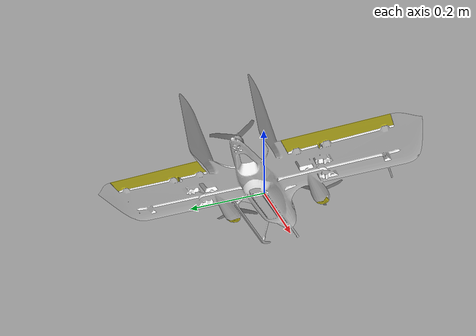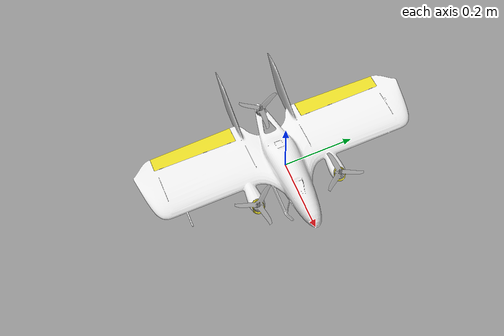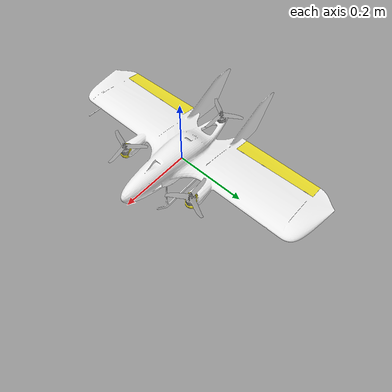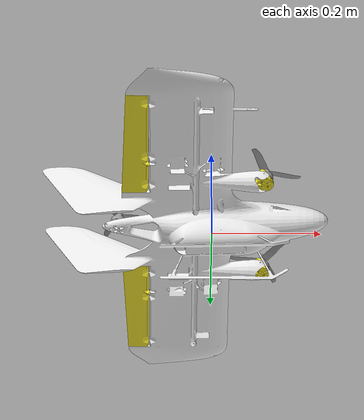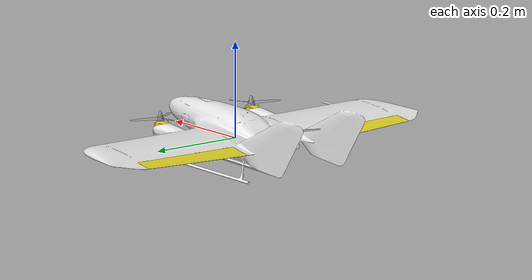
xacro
<?xml version="1.0"?>
<robot name="minihawk_SIM" xmlns:xacro="http://ros.org/wiki/xacro">

  <xacro:arg name="robot_namespace" default=""/>
  <xacro:arg name="robot_prefix" default=""/>

  <!-- Vehicle -->
  <xacro:include filename="$(find robowork_minihawk_description)/urdf/minihawk.xacro" />

  <!-- Instantiate -->
  <xacro:minihawk_robot
         robot_namespace="$(arg robot_namespace)"
         robot_prefix="$(arg robot_prefix)">
  </xacro:minihawk_robot>

</robot>

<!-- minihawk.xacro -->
<robot name="minihawk_robot" xmlns:xacro="http://ros.org/wiki/xacro">

  <xacro:include filename="$(find robowork_minihawk_description)/urdf/robowork_utils.xacro" />

  <xacro:include filename="$(find robowork_minihawk_description)/urdf/usb_camera_nocollisionvisual.urdf.xacro" />

  <xacro:macro name="minihawk_robot" params="robot_namespace robot_prefix">

    <!-- Map link -->

    <!-- Gazebo plugin for ROS Control -->
    <gazebo>
      <plugin name="gazebo_ros_control" filename="libgazebo_ros_control.so">
        <robotNamespace>$(arg robot_namespace)</robotNamespace>
      </plugin>
    </gazebo>

    <!-- Publish joint state & tfs from Gazebo (we don't have a MoveIt pipeline) -->
    <gazebo>
      <plugin name="joint_state_publisher" filename="libgazebo_ros_joint_state_publisher.so">
        <robotNamespace>$(arg robot_namespace)</robotNamespace>
        <jointName>${robot_prefix}imu_joint,${robot_prefix}tilt_base_left_joint,${robot_prefix}tilt_base_right_joint,${robot_prefix}motor_left_joint,${robot_prefix}motor_right_joint,${robot_prefix}motor_rear_joint,${robot_prefix}elevon_left_joint,${robot_prefix}elevon_right_joint</jointName>
        <updateRate>20</updateRate>
        <alwaysOn>true</alwaysOn>
      </plugin>
    </gazebo>

    <gazebo>
      <plugin name="${robot_prefix}base_link_p3d_controller" filename="libgazebo_ros_p3d.so">
        <alwaysOn>true</alwaysOn>
        <robotNamespace>$(arg robot_namespace)</robotNamespace>
        <bodyName>${robot_prefix}base_link</bodyName>
        <topicName>odom</topicName>
        <updateRate>20.0</updateRate>
        <gaussianNoise>0.0</gaussianNoise>
        <frameName>map</frameName>
        <xyzOffsets>0 0 0</xyzOffsets>
        <rpyOffsets>0 0 0</rpyOffsets>
      </plugin>
    </gazebo>

    <!-- Base Link / Airframe -->
    <link
      name="${robot_prefix}base_link">
      <inertial>
        <origin
          xyz="${-0.043952} -0.00020281 0.020884"
          rpy="0 0 0" />  <!-- From Solidworks -->
        <mass
          value="1.260" />
        <inertia
          ixx="0.054585"
          ixy="-4.9142E-06"
          ixz="8.3664E-05"
          iyy="0.0089109"
          iyz="-1.2991E-06"
          izz="0.063038" />
      </inertial>
      <visual>
        <origin
          xyz="0 0 0"
          rpy="0 0 0" />
        <geometry>
          <mesh
            filename="package://robowork_minihawk_description/meshes/visual/airframe_v2_1.STL" scale="0.001 0.001 0.001" />
        </geometry>
      </visual>
      <collision>
        <origin
          xyz="0 0 0"
          rpy="0 0 0" />
        <geometry>
          <mesh
            filename="package://robowork_minihawk_description/meshes/collision/airframe_v2_1.STL" scale="0.001 0.001 0.001" />
        </geometry>
      </collision>
    </link>
    <gazebo reference="${robot_prefix}base_link">
      <enable_wind>true</enable_wind>
      <material>Gazebo/White</material>
      <dampingFactor>0.0</dampingFactor>
      <maxVel>100.0</maxVel>
      <minDepth>0.001</minDepth>
      <mu1>100000.0</mu1>
      <mu2>100000.0</mu2>
      <fdir1>1 0 0</fdir1>
    </gazebo>

    <!-- IMU -->
    <link
      name='${robot_prefix}imu_link'>
      <inertial>
        <origin
          xyz="0 0 0"
          rpy="0 0 0" />
        <mass
          value="0.15" />
        <inertia
          ixx="0.00001"
          ixy="0"
          ixz="0"
          iyy="0.00002"
          iyz="0"
          izz="0.00002" />
      </inertial>
    </link>
    <gazebo reference="${robot_prefix}imu_link">
      <material>Gazebo/Red</material>
      <dampingFactor>0.0</dampingFactor>
    </gazebo>

    <joint
      name='${robot_prefix}imu_joint'
      type='revolute'>
      <origin
        xyz="0 0 0"
        rpy="0 0 0" />
      <parent
        link="${robot_prefix}base_link" />
      <child
        link="${robot_prefix}imu_link" />
      <axis
        xyz="0 0 1" />
      <limit
        lower="0"
        upper="0"
        effort="0"
        velocity="0" />
    </joint>

    <gazebo reference="${robot_prefix}imu_link">
      <gravity>true</gravity>
      <sensor name="${robot_prefix}imu_sensor" type="imu">
        <always_on>true</always_on>
        <update_rate>1000</update_rate>
        <visualize>true</visualize>
        <topic>__default_topic__</topic>
        <plugin filename="libgazebo_ros_imu_sensor.so" name="${robot_prefix}imu_plugin">
          <topicName>${robot_prefix}imu</topicName>
          <bodyName>${robot_prefix}imu_link</bodyName>
          <updateRateHZ>100.0</updateRateHZ>
          <gaussianNoise>0.0</gaussianNoise>
          <xyzOffset>0 0 0</xyzOffset>
          <rpyOffset>0 0 0</rpyOffset>
          <frameName>${robot_prefix}imu_link</frameName>
          <initialOrientationAsReference>false</initialOrientationAsReference>
        </plugin>
        <pose>0 0 0 3.141593 0 0</pose>
      </sensor>

    </gazebo>

    <link
      name="${robot_prefix}elevon_left">
      <inertial>
        <origin
          xyz="-0.016695 -0.0078246 -0.0046242"
          rpy="0 0 0" />
        <mass
          value="0.031995" />
        <inertia
          ixx="0.00014823"
          ixy="-2.1683E-06"
          ixz="-4.102E-07"
          iyy="3.7582E-06"
          iyz="-3.489E-06"
          izz="0.00015162" />
      </inertial>
      <visual>
        <origin
          xyz="0 0 0"
          rpy="0 0 0" />
        <geometry>
          <mesh
            filename="package://robowork_minihawk_description/meshes/visual/elevon_left_2.STL" scale="0.001 0.001 0.001" />
        </geometry>
      </visual>
      <collision>
        <origin
          xyz="0 0 0"
          rpy="0 0 0" />
        <geometry>
          <mesh
            filename="package://robowork_minihawk_description/meshes/collision/elevon_left_2.STL" scale="0.001 0.001 0.001" />
        </geometry>
      </collision>
    </link>
    <gazebo reference="${robot_prefix}elevon_left">
      <material>Gazebo/Yellow</material>
      <dampingFactor>0.0</dampingFactor>
    </gazebo>

    <link
      name="${robot_prefix}elevon_right">
      <inertial>
        <origin
          xyz="-0.016694412474252 0.00780708016092146 -0.00462373768607982"
          rpy="0 0 0" />
        <mass
          value="0.031995066416716" />
        <inertia
          ixx="0.00014823038394432"
          ixy="2.16808957939724E-06"
          ixz="-4.10153864877624E-07"
          iyy="3.7579009438246E-06"
          iyz="3.48789430741058E-06"
          izz="0.000151624173697509" />
      </inertial>
      <visual>
        <origin
          xyz="0 0 0"
          rpy="0 0 0" />
        <geometry>
          <mesh
            filename="package://robowork_minihawk_description/meshes/visual/elevon_right_3.STL" scale="0.001 0.001 0.001" />
        </geometry>
      </visual>
      <collision>
        <origin
          xyz="0 0 0"
          rpy="0 0 0" />
        <geometry>
          <mesh
            filename="package://robowork_minihawk_description/meshes/collision/elevon_right_3.STL" scale="0.001 0.001 0.001" />
        </geometry>
      </collision>
    </link>
    <gazebo reference="${robot_prefix}elevon_right">
      <material>Gazebo/Yellow</material>
      <dampingFactor>0.0</dampingFactor>
    </gazebo>

    <joint
      name="${robot_prefix}elevon_left_joint"
      type="revolute">
      <origin
        xyz="-0.11591 0.22 0.017412"
        rpy="0 0 0" />
      <parent
        link="${robot_prefix}base_link" />
      <child
        link="${robot_prefix}elevon_left" />
      <axis
        xyz="-0.0007333 0.99987 0.016202" />
      <limit
        lower="${-pi}"
        upper="${pi}"
        effort="-1"
        velocity="-1" />
      <dynamics
        damping="0.004"
        friction="0.0"/>
    </joint>
    <gazebo reference="${robot_prefix}elevon_left_joint">
      <implicitSpringDamper>1</implicitSpringDamper>
    </gazebo>

    <joint
      name="${robot_prefix}elevon_right_joint"
      type="revolute">
      <origin
        xyz="-0.11591 -0.22 0.017412"
        rpy="0 0 0" />
      <parent
        link="${robot_prefix}base_link" />
      <child
        link="${robot_prefix}elevon_right" />
      <axis
        xyz="-0.00073329 -0.99987 0.016202" />
      <limit
        lower="${-pi}"
        upper="${pi}"
        effort="-1"
        velocity="-1" />
      <dynamics
        damping="0.004"
        friction="0.0"/>
    </joint>
    <gazebo reference="${robot_prefix}elevon_right_joint">
      <implicitSpringDamper>1</implicitSpringDamper>
    </gazebo>

    <link
      name="${robot_prefix}tilt_base_left">
      <inertial>
        <origin
          xyz="0.011488 0.00092065 -0.011861"
          rpy="0 0 0" />
        <mass
          value="0.0044333" />
        <inertia
          ixx="6.2427E-07"
          ixy="-7.1471E-09"
          ixz="2.0206E-07"
          iyy="6.3888E-07"
          iyz="-3.6525E-09"
          izz="7.1504E-07" />
      </inertial>
      <visual>
        <origin
          xyz="0 0 0"
          rpy="0 0 0" />
        <geometry>
          <mesh
            filename="package://robowork_minihawk_description/meshes/visual/tilt_base_left_6.STL" scale="0.001 0.001 0.001" />
        </geometry>
      </visual>
      <collision>
        <origin
          xyz="0 0 0"
          rpy="0 0 0" />
        <geometry>
          <mesh
            filename="package://robowork_minihawk_description/meshes/collision/tilt_base_left_6.STL" scale="0.001 0.001 0.001" />
        </geometry>
      </collision>
    </link>
    <gazebo reference="${robot_prefix}tilt_base_left">
      <material>Gazebo/Yellow</material>
      <dampingFactor>0.0</dampingFactor>
    </gazebo>

    <link
      name="${robot_prefix}tilt_base_right">
      <inertial>
        <origin
          xyz="0.01148775818104 -0.000920893007347656 -0.0118621303719882"
          rpy="0 0 0" />
        <mass
          value="0.00443298460677752" />
        <inertia
          ixx="6.24157824751321E-07"
          ixy="7.14620513533871E-09"
          ixz="2.02068521423661E-07"
          iyy="6.38865692774954E-07"
          iyz="3.66773546790886E-09"
          izz="7.15011883969272E-07" />
      </inertial>
      <visual>
        <origin
          xyz="0 0 0"
          rpy="0 0 0" />
        <geometry>
          <mesh
            filename="package://robowork_minihawk_description/meshes/visual/tilt_base_right_7.STL" scale="0.001 0.001 0.001" />
        </geometry>
      </visual>
      <collision>
        <origin
          xyz="0 0 0"
          rpy="0 0 0" />
        <geometry>
          <mesh
            filename="package://robowork_minihawk_description/meshes/collision/tilt_base_right_7.STL" scale="0.001 0.001 0.001" />
        </geometry>
      </collision>
    </link>
    <gazebo reference="${robot_prefix}tilt_base_right">
      <material>Gazebo/Yellow</material>
      <dampingFactor>0.0</dampingFactor>
    </gazebo>

    <joint
      name="${robot_prefix}tilt_base_left_joint"
      type="revolute">
      <origin
        xyz="0.079757 0.12 0.029293"
        rpy="0 0 0" />
      <parent
        link="${robot_prefix}base_link" />
      <child
        link="${robot_prefix}tilt_base_left" />
      <axis
        xyz="0 -1 0" />
      <limit
        lower="${-pi/2}"
        upper="${+pi/6}"
        effort="-1"
        velocity="-1" />
      <dynamics
        damping="0.004"
        friction="0.0"/>
    </joint>
    <gazebo reference="${robot_prefix}tilt_base_left_joint">
      <implicitSpringDamper>1</implicitSpringDamper>
    </gazebo>

    <joint
      name="${robot_prefix}tilt_base_right_joint"
      type="revolute">
      <origin
        xyz="0.079757 -0.12 0.029293"
        rpy="0 0 0" />
      <parent
        link="${robot_prefix}base_link" />
      <child
        link="${robot_prefix}tilt_base_right" />
      <axis
        xyz="0 -1 0" />
      <limit
        lower="${-pi/2}"
        upper="${+pi/6}"
        effort="-1"
        velocity="-1" />
      <dynamics
        damping="0.004"
        friction="0.0"/>
    </joint>
    <gazebo reference="${robot_prefix}tilt_base_right_joint">
      <implicitSpringDamper>1</implicitSpringDamper>
    </gazebo>

    <link
      name="${robot_prefix}motor_left">
      <inertial>
        <origin
          xyz="0 0 ${0-0*0.0275}"
          rpy="0 0 0" />
        <mass
          value="0.0097589" />
        <inertia
          ixx="1.2266E-06"
          ixy="4.3016E-10"
          ixz="2.2499E-09"
          iyy="1.2201E-06"
          iyz="5.8639E-12"
          izz="1.7472E-06" />
      </inertial>
      <visual>
        <origin
          xyz="0 0 ${0-0.0275}"
          rpy="0 0 0" />
        <geometry>
          <mesh
            filename="package://robowork_minihawk_description/meshes/visual/motor_left_8.STL" scale="0.001 0.001 0.001" />
        </geometry>
      </visual>
      <collision>
        <origin
          xyz="0 0 0"
          rpy="0 0 0" />
        <geometry>
          <cylinder
            length="0.005" radius="0.0635" />
        </geometry>
      </collision>
    </link>
    <gazebo reference="${robot_prefix}motor_left">
      <material>Gazebo/Grey</material>
      <dampingFactor>0.0</dampingFactor>
    </gazebo>

    <link
      name="${robot_prefix}motor_right">
      <inertial>
        <origin
          xyz="0 0 ${0-0*0.0275}"
          rpy="0 0 0" />
        <mass
          value="0.00975898735747096" />
        <inertia
          ixx="1.2266537510526E-06"
          ixy="3.9115367968485E-10"
          ixz="2.24916927492927E-09"
          iyy="1.22016049722597E-06"
          iyz="5.77655688531629E-12"
          izz="1.74721431804352E-06" />
      </inertial>
      <visual>
        <origin
          xyz="0 0 ${0-0.0275}"
          rpy="0 0 0" />
        <geometry>
          <mesh
            filename="package://robowork_minihawk_description/meshes/visual/motor_right_9.STL" scale="0.001 0.001 0.001" />
        </geometry>
      </visual>
      <collision>
        <origin
          xyz="0 0 0"
          rpy="0 0 0" />
        <geometry>
          <cylinder
            length="0.005" radius="0.0635" />
        </geometry>
      </collision>
    </link>
    <gazebo reference="${robot_prefix}motor_right">
      <material>Gazebo/Grey</material>
      <dampingFactor>0.0</dampingFactor>
    </gazebo>

    <link
      name="${robot_prefix}motor_rear">
      <inertial>
        <origin
          xyz="0 0 ${0-0*0.0275}"
          rpy="0 0 0" />
        <mass
          value="0.0097591" />
        <inertia
          ixx="1.2267E-06"
          ixy="3.8043E-10"
          ixz="-2.2484E-09"
          iyy="1.2202E-06"
          iyz="-3.3864E-12"
          izz="1.7473E-06" />
      </inertial>
      <visual>
        <origin
          xyz="0 0 ${0-0.0275}"
          rpy="0 0 0" />
        <geometry>
          <mesh
            filename="package://robowork_minihawk_description/meshes/visual/motor_rear_5.STL" scale="0.001 0.001 0.001" />
        </geometry>
      </visual>
      <collision>
        <origin
          xyz="0 0 0"
          rpy="0 0 0" />
        <geometry>
          <cylinder
            length="0.005" radius="0.0635" />
          <mesh
            filename="package://robowork_minihawk_description/meshes/collision/motor_rear_5.STL" scale="0.001 0.001 0.001" />
        </geometry>
      </collision>
    </link>
    <gazebo reference="${robot_prefix}motor_rear">
      <material>Gazebo/Grey</material>
      <dampingFactor>0.0</dampingFactor>
    </gazebo>

    <joint
      name="${robot_prefix}motor_left_joint"
      type="continuous">
      <limit
        lower="-1e+16"
        upper="1e+16"
        effort="-1"
        velocity="-1" />
      <origin
        xyz="0.016321 0 ${-0.014786+0.0275}"
        rpy="0 0.047169 0" />
      <parent
        link="${robot_prefix}tilt_base_left" />
      <child
        link="${robot_prefix}motor_left" />
      <axis
        xyz="0 0 1" />
      <dynamics
        damping="0.004"
        friction="0.0"/>
    </joint>
    <gazebo reference="${robot_prefix}motor_left_joint">
      <implicitSpringDamper>1</implicitSpringDamper>
    </gazebo>

    <joint
      name="${robot_prefix}motor_right_joint"
      type="continuous">
      <limit
        lower="-1e+16"
        upper="1e+16"
        effort="-1"
        velocity="-1" />
      <origin
        xyz="0.016321 0 ${-0.014786+0.0275}"
        rpy="0 0.047169 0" />
      <parent
        link="${robot_prefix}tilt_base_right" />
      <child
        link="${robot_prefix}motor_right" />
      <axis
        xyz="0 0 1" />
      <dynamics
        damping="0.004"
        friction="0.0"/>
    </joint>
    <gazebo reference="${robot_prefix}motor_right_joint">
      <implicitSpringDamper>1</implicitSpringDamper>
    </gazebo>

    <joint
      name="${robot_prefix}motor_rear_joint"
      type="continuous">
      <limit
        lower="-1e+16"
        upper="1e+16"
        effort="-1"
        velocity="-1" />
      <origin
        xyz="-0.17004 0 ${0.015349+0.0275}"
        rpy="0 0.1293 0" />
      <parent
        link="${robot_prefix}base_link" />
      <child
        link="${robot_prefix}motor_rear" />
      <axis
        xyz="0 0 1" />
      <dynamics
        damping="0.004"
        friction="0.0"/>
    </joint>
    <gazebo reference="${robot_prefix}motor_rear_joint">
      <implicitSpringDamper>1</implicitSpringDamper>
    </gazebo>

    <gazebo>
      <plugin name='${robot_prefix}motor_rear_gazebo_model' filename='libgazebo_motor_model.so'>
        <robotNamespace>$(arg robot_namespace)</robotNamespace>
        <jointName>${robot_prefix}motor_rear_joint</jointName>
        <linkName>${robot_prefix}motor_rear</linkName>
        <turningDirection>ccw</turningDirection>
        <timeConstantUp>0.0125</timeConstantUp>
        <timeConstantDown>0.025</timeConstantDown>
        <maxRotVelocity>5000</maxRotVelocity>
        <motorConstant>2e-06</motorConstant>
        <momentConstant>1e-07</momentConstant>
        <commandSubTopic>/gazebo/command/motor_speed</commandSubTopic>
        <motorNumber>3</motorNumber>
        <rotorDragCoefficient>0.0000000806428</rotorDragCoefficient>
        <rollingMomentCoefficient>1e-09</rollingMomentCoefficient>
        <rotorVelocitySlowdownSim>20</rotorVelocitySlowdownSim>
      </plugin>
      <plugin name='${robot_prefix}motor_left_gazebo_model' filename='libgazebo_motor_model.so'>
        <robotNamespace>$(arg robot_namespace)</robotNamespace>
        <jointName>${robot_prefix}motor_left_joint</jointName>
        <linkName>${robot_prefix}motor_left</linkName>
        <turningDirection>cw</turningDirection>
        <timeConstantUp>0.0125</timeConstantUp>
        <timeConstantDown>0.025</timeConstantDown>
        <maxRotVelocity>5000</maxRotVelocity>
        <motorConstant>2e-06</motorConstant>
        <momentConstant>1e-07</momentConstant>r
        <commandSubTopic>/gazebo/command/motor_speed</commandSubTopic>
        <motorNumber>0</motorNumber>
        <rotorDragCoefficient>0.0000000806428</rotorDragCoefficient>
        <rollingMomentCoefficient>1e-09</rollingMomentCoefficient>
        <rotorVelocitySlowdownSim>20</rotorVelocitySlowdownSim>
      </plugin>
      <plugin name='${robot_prefix}motor_right_gazebo_model' filename='libgazebo_motor_model.so'>
        <robotNamespace>$(arg robot_namespace)</robotNamespace>
        <jointName>${robot_prefix}motor_right_joint</jointName>
        <linkName>${robot_prefix}motor_right</linkName>
        <turningDirection>ccw</turningDirection>
        <timeConstantUp>0.0125</timeConstantUp>
        <timeConstantDown>0.025</timeConstantDown>
        <maxRotVelocity>5000</maxRotVelocity>
        <motorConstant>2e-06</motorConstant>
        <momentConstant>1e-07</momentConstant>
        <commandSubTopic>/gazebo/command/motor_speed</commandSubTopic>
        <motorNumber>1</motorNumber>
        <rotorDragCoefficient>0.0000000806428</rotorDragCoefficient>
        <rollingMomentCoefficient>1e-09</rollingMomentCoefficient>
        <rotorVelocitySlowdownSim>20</rotorVelocitySlowdownSim>
      </plugin>
    </gazebo>

    <gazebo>
      <plugin name="${robot_prefix}wing_left" filename="libLiftDragPlugin.so">

        <robotNamespace>${robot_namespace}</robotNamespace>  <!-- required for PX4's sitl_gazebo version of libLiftDragPlugin.so -->

        <a0>0.05984281113</a0>
        <cla>4.752798721</cla>
        <cda>0.6417112299</cda>
        <cma>0.0</cma>
        <alpha_stall>0.3391428111</alpha_stall>
        <cla_stall>-3.85</cla_stall>
        <cda_stall>-0.9233984055</cda_stall>
        <cma_stall>0</cma_stall>
        <cp>-0.025 0.3 0.05</cp>
        <area>0.5</area>
        <air_density>1.2041</air_density>
        <forward>1 0 0</forward>
        <upward>0 0 1</upward>
        <link_name>${robot_prefix}base_link</link_name>
        <control_joint_name>${robot_prefix}elevon_left_joint</control_joint_name>
        <control_joint_rad_to_cl>+1.5</control_joint_rad_to_cl>
        <windSubTopic>world_wind</windSubTopic>
      </plugin>

      <plugin name="${robot_prefix}wing_right" filename="libLiftDragPlugin.so">

        <robotNamespace>${robot_namespace}</robotNamespace>  <!-- required for PX4's sitl_gazebo version of libLiftDragPlugin.so -->

        <a0>0.05984281113</a0>
        <cla>4.752798721</cla>
        <cda>0.6417112299</cda>
        <cma>0.0</cma>
        <alpha_stall>0.3391428111</alpha_stall>
        <cla_stall>-3.85</cla_stall>
        <cda_stall>-0.9233984055</cda_stall>
        <cma_stall>0</cma_stall>
        <cp>-0.025 -0.3 0.05</cp>
        <area>0.5</area>
        <air_density>1.2041</air_density>
        <forward>1 0 0</forward>
        <upward>0 0 1</upward>
        <link_name>${robot_prefix}base_link</link_name>
        <control_joint_name>${robot_prefix}elevon_right_joint</control_joint_name>
        <control_joint_rad_to_cl>-1.5</control_joint_rad_to_cl>
        <windSubTopic>world_wind</windSubTopic>
      </plugin>
    </gazebo>

    <gazebo>
      <plugin name="${robot_prefix}ardupilot_plugin" filename="libArduPilotPlugin.so">
        <fdm_addr>127.0.0.1</fdm_addr>
        <fdm_port_in>9002</fdm_port_in>
        <fdm_port_out>9003</fdm_port_out>
        <!--
          Require by APM :
          Only change model and gazebo from XYZ to XY-Z coordinates
        -->
        <modelXYZToAirplaneXForwardZDown>0 0 0 3.141593 0 0</modelXYZToAirplaneXForwardZDown>
        <gazeboXYZToNED>0 0 0 3.141593 0 0</gazeboXYZToNED>
        <imuName>${robot_prefix}imu_sensor</imuName>
        <connectionTimeoutMaxCount>5</connectionTimeoutMaxCount>

        <!--
          incoming control command [0, 1]
          so offset it by 0 to get [0, 1]
          and divide max target by 1.
          offset = 0
          multiplier = 838 max rpm / 1 = 838
        -->
        <!--
          turningDirection is deprecated. Please use multiplier.
          Map 'cw' to '-1' and 'ccw' to '1'.
        -->
        <control channel="0">
          <type>VELOCITY</type>
          <offset>0</offset>
          <p_gain>0.005</p_gain>
          <i_gain>0</i_gain>
          <d_gain>0</d_gain>
          <i_max>0</i_max>
          <i_min>0</i_min>
          <cmd_max>1000.0</cmd_max>
          <cmd_min>-1000.0</cmd_min>
          <useForce>1</useForce>
          <jointName>${robot_prefix}motor_right_joint</jointName>
          <multiplier>2000</multiplier>
          <rotorVelocitySlowdownSim>20</rotorVelocitySlowdownSim>
        </control>
        <control channel="1">
          <type>VELOCITY</type>
          <offset>0</offset>
          <p_gain>0.005</p_gain>
          <i_gain>0</i_gain>
          <d_gain>0</d_gain>
          <i_max>0</i_max>
          <i_min>0</i_min>
          <cmd_max>1000.0</cmd_max>
          <cmd_min>-1000.0</cmd_min>
          <useForce>1</useForce>
          <jointName>${robot_prefix}motor_left_joint</jointName>
          <multiplier>-2000</multiplier>
          <rotorVelocitySlowdownSim>20</rotorVelocitySlowdownSim>
        </control>
        <control channel="3">
          <type>VELOCITY</type>
          <offset>0</offset>
          <p_gain>0.005</p_gain>
          <i_gain>0</i_gain>
          <d_gain>0</d_gain>
          <i_max>0</i_max>
          <i_min>0</i_min>
          <cmd_max>1000.0</cmd_max>
          <cmd_min>-1000.0</cmd_min>
          <useForce>1</useForce>
          <jointName>${robot_prefix}motor_rear_joint</jointName>
          <multiplier>3000</multiplier>
          <rotorVelocitySlowdownSim>20</rotorVelocitySlowdownSim>
        </control>

        <control channel="4">
          <multiplier>-2.09439510</multiplier>
          <offset>-0.3</offset>
          <type>POSITION</type>
          <p_gain>1.0</p_gain>
          <i_gain>0</i_gain>
          <d_gain>0.0</d_gain>
          <i_max>0</i_max>
          <i_min>0</i_min>
          <cmd_max>1.0</cmd_max>
          <cmd_min>-1.0</cmd_min>
          <useForce>1</useForce>
          <jointName>${robot_prefix}tilt_base_left_joint</jointName>
        </control>
        <control channel="5">
          <multiplier>2.09439510</multiplier>
          <offset>-0.7</offset>
          <type>POSITION</type>
          <p_gain>1.0</p_gain>
          <i_gain>0</i_gain>
          <d_gain>0.0</d_gain>
          <i_max>0</i_max>
          <i_min>0</i_min>
          <cmd_max>1.0</cmd_max>
          <cmd_min>-1.0</cmd_min>
          <useForce>1</useForce>
          <jointName>${robot_prefix}tilt_base_right_joint</jointName>
        </control>

        <control channel="6">
          <multiplier>1.0</multiplier>
          <offset>-0.5</offset>
          <type>POSITION</type>
          <p_gain>1.0</p_gain>
          <i_gain>0</i_gain>
          <d_gain>0.0</d_gain>
          <i_max>0</i_max>
          <i_min>0</i_min>
          <cmd_max>1</cmd_max>
          <cmd_min>-1</cmd_min>
          <useForce>1</useForce>
          <jointName>${robot_prefix}elevon_left_joint</jointName>
        </control>
        <control channel="7">
          <multiplier>1.0</multiplier>
          <offset>-0.5</offset>
          <type>POSITION</type>
          <p_gain>1.0</p_gain>
          <i_gain>0</i_gain>
          <d_gain>0.0</d_gain>
          <i_max>0</i_max>
          <i_min>0</i_min>
          <cmd_max>1</cmd_max>
          <cmd_min>-1</cmd_min>
          <useForce>1</useForce>
          <jointName>${robot_prefix}elevon_right_joint</jointName>
        </control>

      </plugin>
    </gazebo>

    <!-- USB Camera -->
    <joint name="${robot_prefix}usb_camera_mount_joint" type="fixed">
      <parent link="${robot_prefix}base_link" />
      <child link="${robot_prefix}usb_camera_link" />
      <origin xyz="0.073591584 0 -0.031723299" rpy="0 ${pi/2} 0" /> #From: Solidworks
    </joint>
    <xacro:usb_camera frame="${robot_prefix}usb_camera_link" name="${robot_prefix}usb_camera"
     camera_x="0.0195" camera_y="0.044" camera_z="0.035" camera_mass="0.050"
     hfov="1.0471975512" near="0.05" far="300" format="R8G8B8" fps="10" width="1280" height="720"/> #format="L8"
    <gazebo reference="${robot_prefix}usb_camera_link">
      <material>Gazebo/DarkGrey</material>
    </gazebo>

  </xacro:macro>

</robot>

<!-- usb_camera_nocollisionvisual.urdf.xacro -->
<robot xmlns:xacro="http://www.ros.org/wiki/xacro" name="usb_camera">
  <!-- camera_{x,y,z,mass} are they physical properties of the camera since
       flea3's can have different physical footprints.  -->
  <xacro:macro name="usb_camera"
    params="frame:=camera name:=camera camera_x:=0.0754 camera_y:=0.029 camera_z:=0.035 camera_mass:=0.085
             hfov:=1.0471975512 fps:=120 width:=1272 height:=1016 format:=R8G8B8 near:=0.5 far:=300">

    <link name="${frame}">
      <inertial>
        <mass value="${camera_mass}" />
        <inertia ixx="1e-6" ixy="0" ixz="0" iyy="1e-6" iyz="0" izz="1e-6" />
      </inertial>
    </link>

    <link name="${frame}_optical" />

    <joint name="${frame}_optical_joint" type="fixed">
      <origin xyz="0 0 0" rpy="-1.570796 0 -1.570796" />
      <parent link="${frame}" />
      <child link="${frame}_optical" />
    </joint>

    <!-- Gazebo -->
    <gazebo reference="${frame}_optical">
      <material>Gazebo/Grey</material>
      <sensor type="camera" name="${name}">
        <update_rate>${fps}</update_rate>
        <camera name="${name}">
          <pose>0 0 0 0 -1.5707 1.5707</pose>
          <horizontal_fov>${hfov}</horizontal_fov>
          <image>
            <width>${width}</width>
            <height>${height}</height>
            <format>${format}</format>
          </image>
          <clip>
            <near>${near}</near>
            <far>${far}</far>
          </clip>
          <noise>
            <type>gaussian</type>
            <mean>0.0</mean>
            <stddev>0.007</stddev>
          </noise>
        </camera>

        <plugin name="camera_controller" filename="libgazebo_ros_camera.so">
          <alwaysOn>true</alwaysOn>
          <updateRate>${fps}</updateRate>
          <cameraName>${name}</cameraName>
          <imageTopicName>image_raw</imageTopicName>
          <cameraInfoTopicName>camera_info</cameraInfoTopicName>
          <frameName>/${frame}_optical</frameName>
          <hackBaseline>0.07</hackBaseline>
          <distortionK1>0.0</distortionK1>
          <distortionK2>0.0</distortionK2>
          <distortionK3>0.0</distortionK3>
          <distortionT1>0.0</distortionT1>
          <distortionT2>0.0</distortionT2>
        </plugin>
      </sensor>
    </gazebo>
  </xacro:macro>
</robot>
